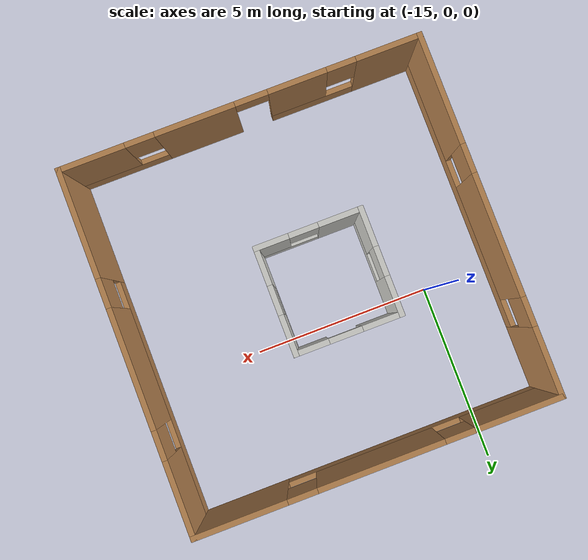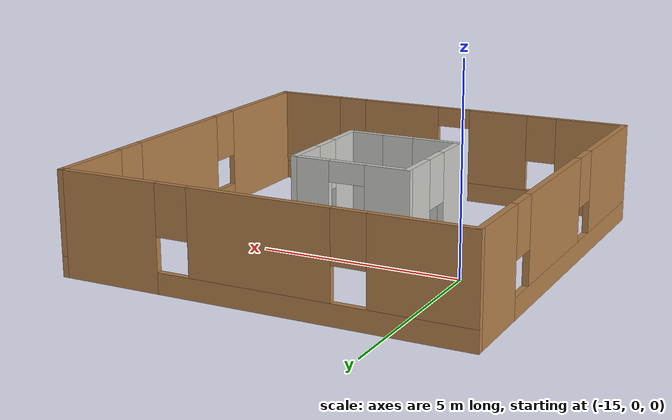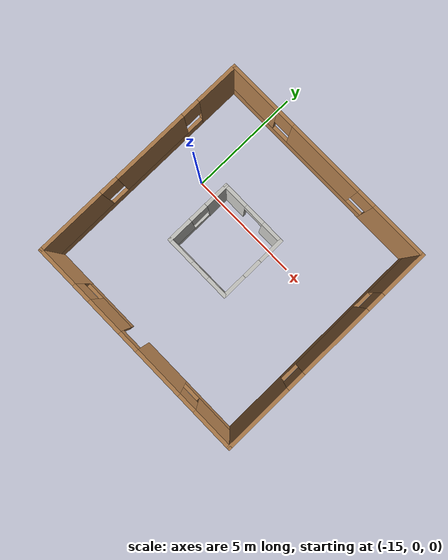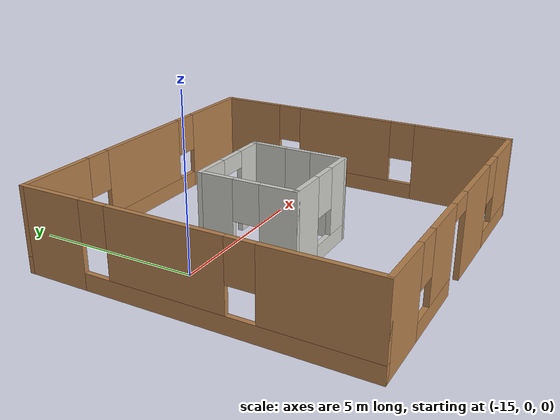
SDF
<?xml version='1.0'?>
<sdf version='1.6'>
  <model name='Building'>
    <pose frame=''>-11.9528 -1.23874 0 0 -0 0</pose>
    <link name='Wall_10'>
      <pose frame=''>-0.487001 1.567 0 0 -0 3.14159</pose>
      <visual name='Wall_10_Visual_0'>
        <pose frame=''>-1.01 0 1.25 0 -0 0</pose>
        <geometry>
          <box>
            <size>0.979999 0.15 2.5</size>
          </box>
        </geometry>
        <material>
          <script>
            <uri>file://media/materials/scripts/gazebo.material</uri>
            <name>Gazebo/CeilingTiled</name>
          </script>
          <ambient>1 1 1 1</ambient>
        </material>
        <meta>
          <layer>0</layer>
        </meta>
      </visual>
      <collision name='Wall_10_Collision_0'>
        <geometry>
          <box>
            <size>0.979999 0.15 2.5</size>
          </box>
        </geometry>
        <pose frame=''>-1.01 0 1.25 0 -0 0</pose>
      </collision>
      <visual name='Wall_10_Visual_1'>
        <pose frame=''>0.94 0 1.25 0 -0 0</pose>
        <geometry>
          <box>
            <size>1.12 0.15 2.5</size>
          </box>
        </geometry>
        <material>
          <script>
            <uri>file://media/materials/scripts/gazebo.material</uri>
            <name>Gazebo/CeilingTiled</name>
          </script>
          <ambient>1 1 1 1</ambient>
        </material>
        <meta>
          <layer>0</layer>
        </meta>
      </visual>
      <collision name='Wall_10_Collision_1'>
        <geometry>
          <box>
            <size>1.12 0.15 2.5</size>
          </box>
        </geometry>
        <pose frame=''>0.94 0 1.25 0 -0 0</pose>
      </collision>
      <visual name='Wall_10_Visual_2'>
        <pose frame=''>-0.070001 0 2.25 0 -0 0</pose>
        <geometry>
          <box>
            <size>0.9 0.15 0.5</size>
          </box>
        </geometry>
        <material>
          <script>
            <uri>file://media/materials/scripts/gazebo.material</uri>
            <name>Gazebo/CeilingTiled</name>
          </script>
          <ambient>1 1 1 1</ambient>
        </material>
        <meta>
          <layer>0</layer>
        </meta>
      </visual>
      <collision name='Wall_10_Collision_2'>
        <geometry>
          <box>
            <size>0.9 0.15 0.5</size>
          </box>
        </geometry>
        <pose frame=''>-0.070001 0 2.25 0 -0 0</pose>
      </collision>
    </link>
    <link name='Wall_2'>
      <pose frame=''>-4.925 0 0 0 0 -1.5708</pose>
      <visual name='Wall_2_Visual_0'>
        <pose frame=''>-4.024 0 1.25 0 -0 0</pose>
        <geometry>
          <box>
            <size>1.952 0.15 2.5</size>
          </box>
        </geometry>
        <material>
          <script>
            <uri>file://media/materials/scripts/gazebo.material</uri>
            <name>Gazebo/Wood</name>
          </script>
          <ambient>0.760784 0.662745 0.627451 1</ambient>
        </material>
        <meta>
          <layer>0</layer>
        </meta>
      </visual>
      <collision name='Wall_2_Collision_0'>
        <geometry>
          <box>
            <size>1.952 0.15 2.5</size>
          </box>
        </geometry>
        <pose frame=''>-4.024 0 1.25 0 -0 0</pose>
      </collision>
      <visual name='Wall_2_Visual_1'>
        <pose frame=''>0.976 0 0.25 0 -0 0</pose>
        <geometry>
          <box>
            <size>8.048 0.15 0.5</size>
          </box>
        </geometry>
        <material>
          <script>
            <uri>file://media/materials/scripts/gazebo.material</uri>
            <name>Gazebo/Wood</name>
          </script>
          <ambient>0.760784 0.662745 0.627451 1</ambient>
        </material>
        <meta>
          <layer>0</layer>
        </meta>
      </visual>
      <collision name='Wall_2_Collision_1'>
        <geometry>
          <box>
            <size>8.048 0.15 0.5</size>
          </box>
        </geometry>
        <pose frame=''>0.976 0 0.25 0 -0 0</pose>
      </collision>
      <visual name='Wall_2_Visual_2'>
        <pose frame=''>-0.5665 0 1.5 0 -0 0</pose>
        <geometry>
          <box>
            <size>3.363 0.15 2</size>
          </box>
        </geometry>
        <material>
          <script>
            <uri>file://media/materials/scripts/gazebo.material</uri>
            <name>Gazebo/Wood</name>
          </script>
          <ambient>0.760784 0.662745 0.627451 1</ambient>
        </material>
        <meta>
          <layer>0</layer>
        </meta>
      </visual>
      <collision name='Wall_2_Collision_2'>
        <geometry>
          <box>
            <size>3.363 0.15 2</size>
          </box>
        </geometry>
        <pose frame=''>-0.5665 0 1.5 0 -0 0</pose>
      </collision>
      <visual name='Wall_2_Visual_3'>
        <pose frame=''>3.4575 0 1.5 0 -0 0</pose>
        <geometry>
          <box>
            <size>3.085 0.15 2</size>
          </box>
        </geometry>
        <material>
          <script>
            <uri>file://media/materials/scripts/gazebo.material</uri>
            <name>Gazebo/Wood</name>
          </script>
          <ambient>0.760784 0.662745 0.627451 1</ambient>
        </material>
        <meta>
          <layer>0</layer>
        </meta>
      </visual>
      <collision name='Wall_2_Collision_3'>
        <geometry>
          <box>
            <size>3.085 0.15 2</size>
          </box>
        </geometry>
        <pose frame=''>3.4575 0 1.5 0 -0 0</pose>
      </collision>
      <visual name='Wall_2_Visual_4'>
        <pose frame=''>-2.648 0 1.9 0 -0 0</pose>
        <geometry>
          <box>
            <size>0.8 0.15 1.2</size>
          </box>
        </geometry>
        <material>
          <script>
            <uri>file://media/materials/scripts/gazebo.material</uri>
            <name>Gazebo/Wood</name>
          </script>
          <ambient>0.760784 0.662745 0.627451 1</ambient>
        </material>
        <meta>
          <layer>0</layer>
        </meta>
      </visual>
      <collision name='Wall_2_Collision_4'>
        <geometry>
          <box>
            <size>0.8 0.15 1.2</size>
          </box>
        </geometry>
        <pose frame=''>-2.648 0 1.9 0 -0 0</pose>
      </collision>
      <visual name='Wall_2_Visual_5'>
        <pose frame=''>1.515 0 1.9 0 -0 0</pose>
        <geometry>
          <box>
            <size>0.8 0.15 1.2</size>
          </box>
        </geometry>
        <material>
          <script>
            <uri>file://media/materials/scripts/gazebo.material</uri>
            <name>Gazebo/Wood</name>
          </script>
          <ambient>0.760784 0.662745 0.627451 1</ambient>
        </material>
        <meta>
          <layer>0</layer>
        </meta>
      </visual>
      <collision name='Wall_2_Collision_5'>
        <geometry>
          <box>
            <size>0.8 0.15 1.2</size>
          </box>
        </geometry>
        <pose frame=''>1.515 0 1.9 0 -0 0</pose>
      </collision>
    </link>
    <link name='Wall_3'>
      <pose frame=''>0 -4.925 0 0 -0 0</pose>
      <visual name='Wall_3_Visual_0'>
        <pose frame=''>-4.0815 0 1.25 0 -0 0</pose>
        <geometry>
          <box>
            <size>1.837 0.15 2.5</size>
          </box>
        </geometry>
        <material>
          <script>
            <uri>file://media/materials/scripts/gazebo.material</uri>
            <name>Gazebo/Wood</name>
          </script>
          <ambient>0.760784 0.662745 0.627451 1</ambient>
        </material>
        <meta>
          <layer>0</layer>
        </meta>
      </visual>
      <collision name='Wall_3_Collision_0'>
        <geometry>
          <box>
            <size>1.837 0.15 2.5</size>
          </box>
        </geometry>
        <pose frame=''>-4.0815 0 1.25 0 -0 0</pose>
      </collision>
      <visual name='Wall_3_Visual_1'>
        <pose frame=''>1.241 0 1.25 0 -0 0</pose>
        <geometry>
          <box>
            <size>2.186 0.15 2.5</size>
          </box>
        </geometry>
        <material>
          <script>
            <uri>file://media/materials/scripts/gazebo.material</uri>
            <name>Gazebo/Wood</name>
          </script>
          <ambient>0.760784 0.662745 0.627451 1</ambient>
        </material>
        <meta>
          <layer>0</layer>
        </meta>
      </visual>
      <collision name='Wall_3_Collision_1'>
        <geometry>
          <box>
            <size>2.186 0.15 2.5</size>
          </box>
        </geometry>
        <pose frame=''>1.241 0 1.25 0 -0 0</pose>
      </collision>
      <visual name='Wall_3_Visual_2'>
        <pose frame=''>-1.9575 0 0.25 0 -0 0</pose>
        <geometry>
          <box>
            <size>2.411 0.15 0.5</size>
          </box>
        </geometry>
        <material>
          <script>
            <uri>file://media/materials/scripts/gazebo.material</uri>
            <name>Gazebo/Wood</name>
          </script>
          <ambient>0.760784 0.662745 0.627451 1</ambient>
        </material>
        <meta>
          <layer>0</layer>
        </meta>
      </visual>
      <collision name='Wall_3_Collision_2'>
        <geometry>
          <box>
            <size>2.411 0.15 0.5</size>
          </box>
        </geometry>
        <pose frame=''>-1.9575 0 0.25 0 -0 0</pose>
      </collision>
      <visual name='Wall_3_Visual_3'>
        <pose frame=''>3.667 0 0.25 0 -0 0</pose>
        <geometry>
          <box>
            <size>2.666 0.15 0.5</size>
          </box>
        </geometry>
        <material>
          <script>
            <uri>file://media/materials/scripts/gazebo.material</uri>
            <name>Gazebo/Wood</name>
          </script>
          <ambient>0.760784 0.662745 0.627451 1</ambient>
        </material>
        <meta>
          <layer>0</layer>
        </meta>
      </visual>
      <collision name='Wall_3_Collision_3'>
        <geometry>
          <box>
            <size>2.666 0.15 0.5</size>
          </box>
        </geometry>
        <pose frame=''>3.667 0 0.25 0 -0 0</pose>
      </collision>
      <visual name='Wall_3_Visual_4'>
        <pose frame=''>-1.5575 0 1.5 0 -0 0</pose>
        <geometry>
          <box>
            <size>1.611 0.15 2</size>
          </box>
        </geometry>
        <material>
          <script>
            <uri>file://media/materials/scripts/gazebo.material</uri>
            <name>Gazebo/Wood</name>
          </script>
          <ambient>0.760784 0.662745 0.627451 1</ambient>
        </material>
        <meta>
          <layer>0</layer>
        </meta>
      </visual>
      <collision name='Wall_3_Collision_4'>
        <geometry>
          <box>
            <size>1.611 0.15 2</size>
          </box>
        </geometry>
        <pose frame=''>-1.5575 0 1.5 0 -0 0</pose>
      </collision>
      <visual name='Wall_3_Visual_5'>
        <pose frame=''>-1.5575 0 1.5 0 -0 0</pose>
        <geometry>
          <box>
            <size>1.611 0.15 2</size>
          </box>
        </geometry>
        <material>
          <script>
            <uri>file://media/materials/scripts/gazebo.material</uri>
            <name>Gazebo/Wood</name>
          </script>
          <ambient>0.760784 0.662745 0.627451 1</ambient>
        </material>
        <meta>
          <layer>0</layer>
        </meta>
      </visual>
      <collision name='Wall_3_Collision_5'>
        <geometry>
          <box>
            <size>1.611 0.15 2</size>
          </box>
        </geometry>
        <pose frame=''>-1.5575 0 1.5 0 -0 0</pose>
      </collision>
      <visual name='Wall_3_Visual_6'>
        <pose frame=''>4.067 0 1.5 0 -0 0</pose>
        <geometry>
          <box>
            <size>1.866 0.15 2</size>
          </box>
        </geometry>
        <material>
          <script>
            <uri>file://media/materials/scripts/gazebo.material</uri>
            <name>Gazebo/Wood</name>
          </script>
          <ambient>0.760784 0.662745 0.627451 1</ambient>
        </material>
        <meta>
          <layer>0</layer>
        </meta>
      </visual>
      <collision name='Wall_3_Collision_6'>
        <geometry>
          <box>
            <size>1.866 0.15 2</size>
          </box>
        </geometry>
        <pose frame=''>4.067 0 1.5 0 -0 0</pose>
      </collision>
      <visual name='Wall_3_Visual_7'>
        <pose frame=''>-2.763 0 1.9 0 -0 0</pose>
        <geometry>
          <box>
            <size>0.8 0.15 1.2</size>
          </box>
        </geometry>
        <material>
          <script>
            <uri>file://media/materials/scripts/gazebo.material</uri>
            <name>Gazebo/Wood</name>
          </script>
          <ambient>0.760784 0.662745 0.627451 1</ambient>
        </material>
        <meta>
          <layer>0</layer>
        </meta>
      </visual>
      <collision name='Wall_3_Collision_7'>
        <geometry>
          <box>
            <size>0.8 0.15 1.2</size>
          </box>
        </geometry>
        <pose frame=''>-2.763 0 1.9 0 -0 0</pose>
      </collision>
      <visual name='Wall_3_Visual_8'>
        <pose frame=''>2.734 0 1.9 0 -0 0</pose>
        <geometry>
          <box>
            <size>0.8 0.15 1.2</size>
          </box>
        </geometry>
        <material>
          <script>
            <uri>file://media/materials/scripts/gazebo.material</uri>
            <name>Gazebo/Wood</name>
          </script>
          <ambient>0.760784 0.662745 0.627451 1</ambient>
        </material>
        <meta>
          <layer>0</layer>
        </meta>
      </visual>
      <collision name='Wall_3_Collision_8'>
        <geometry>
          <box>
            <size>0.8 0.15 1.2</size>
          </box>
        </geometry>
        <pose frame=''>2.734 0 1.9 0 -0 0</pose>
      </collision>
      <visual name='Wall_3_Visual_9'>
        <pose frame=''>-0.302 0 2.25 0 -0 0</pose>
        <geometry>
          <box>
            <size>0.9 0.15 0.5</size>
          </box>
        </geometry>
        <material>
          <script>
            <uri>file://media/materials/scripts/gazebo.material</uri>
            <name>Gazebo/Wood</name>
          </script>
          <ambient>0.760784 0.662745 0.627451 1</ambient>
        </material>
        <meta>
          <layer>0</layer>
        </meta>
      </visual>
      <collision name='Wall_3_Collision_9'>
        <geometry>
          <box>
            <size>0.9 0.15 0.5</size>
          </box>
        </geometry>
        <pose frame=''>-0.302 0 2.25 0 -0 0</pose>
      </collision>
      <visual name='Wall_3_Visual_10'>
        <pose frame=''>-0.302 0 2.25 0 -0 0</pose>
        <geometry>
          <box>
            <size>0.9 0.15 0.5</size>
          </box>
        </geometry>
        <material>
          <script>
            <uri>file://media/materials/scripts/gazebo.material</uri>
            <name>Gazebo/Wood</name>
          </script>
          <ambient>0.760784 0.662745 0.627451 1</ambient>
        </material>
        <meta>
          <layer>0</layer>
        </meta>
      </visual>
      <collision name='Wall_3_Collision_10'>
        <geometry>
          <box>
            <size>0.9 0.15 0.5</size>
          </box>
        </geometry>
        <pose frame=''>-0.302 0 2.25 0 -0 0</pose>
      </collision>
    </link>
    <link name='Wall_4'>
      <pose frame=''>4.925 0 0 0 -0 1.5708</pose>
      <visual name='Wall_4_Visual_0'>
        <pose frame=''>-3.492 0 1.25 0 -0 0</pose>
        <geometry>
          <box>
            <size>3.016 0.15 2.5</size>
          </box>
        </geometry>
        <material>
          <script>
            <uri>file://media/materials/scripts/gazebo.material</uri>
            <name>Gazebo/Wood</name>
          </script>
          <ambient>0.760784 0.662745 0.627451 1</ambient>
        </material>
        <meta>
          <layer>0</layer>
        </meta>
      </visual>
      <collision name='Wall_4_Collision_0'>
        <geometry>
          <box>
            <size>3.016 0.15 2.5</size>
          </box>
        </geometry>
        <pose frame=''>-3.492 0 1.25 0 -0 0</pose>
      </collision>
      <visual name='Wall_4_Visual_1'>
        <pose frame=''>1.508 0 0.25 0 -0 0</pose>
        <geometry>
          <box>
            <size>6.984 0.15 0.5</size>
          </box>
        </geometry>
        <material>
          <script>
            <uri>file://media/materials/scripts/gazebo.material</uri>
            <name>Gazebo/Wood</name>
          </script>
          <ambient>0.760784 0.662745 0.627451 1</ambient>
        </material>
        <meta>
          <layer>0</layer>
        </meta>
      </visual>
      <collision name='Wall_4_Collision_1'>
        <geometry>
          <box>
            <size>6.984 0.15 0.5</size>
          </box>
        </geometry>
        <pose frame=''>1.508 0 0.25 0 -0 0</pose>
      </collision>
      <visual name='Wall_4_Visual_2'>
        <pose frame=''>0.4515 0 1.5 0 -0 0</pose>
        <geometry>
          <box>
            <size>3.271 0.15 2</size>
          </box>
        </geometry>
        <material>
          <script>
            <uri>file://media/materials/scripts/gazebo.material</uri>
            <name>Gazebo/Wood</name>
          </script>
          <ambient>0.760784 0.662745 0.627451 1</ambient>
        </material>
        <meta>
          <layer>0</layer>
        </meta>
      </visual>
      <collision name='Wall_4_Collision_2'>
        <geometry>
          <box>
            <size>3.271 0.15 2</size>
          </box>
        </geometry>
        <pose frame=''>0.4515 0 1.5 0 -0 0</pose>
      </collision>
      <visual name='Wall_4_Visual_3'>
        <pose frame=''>3.9435 0 1.5 0 -0 0</pose>
        <geometry>
          <box>
            <size>2.113 0.15 2</size>
          </box>
        </geometry>
        <material>
          <script>
            <uri>file://media/materials/scripts/gazebo.material</uri>
            <name>Gazebo/Wood</name>
          </script>
          <ambient>0.760784 0.662745 0.627451 1</ambient>
        </material>
        <meta>
          <layer>0</layer>
        </meta>
      </visual>
      <collision name='Wall_4_Collision_3'>
        <geometry>
          <box>
            <size>2.113 0.15 2</size>
          </box>
        </geometry>
        <pose frame=''>3.9435 0 1.5 0 -0 0</pose>
      </collision>
      <visual name='Wall_4_Visual_4'>
        <pose frame=''>-1.584 0 1.9 0 -0 0</pose>
        <geometry>
          <box>
            <size>0.8 0.15 1.2</size>
          </box>
        </geometry>
        <material>
          <script>
            <uri>file://media/materials/scripts/gazebo.material</uri>
            <name>Gazebo/Wood</name>
          </script>
          <ambient>0.760784 0.662745 0.627451 1</ambient>
        </material>
        <meta>
          <layer>0</layer>
        </meta>
      </visual>
      <collision name='Wall_4_Collision_4'>
        <geometry>
          <box>
            <size>0.8 0.15 1.2</size>
          </box>
        </geometry>
        <pose frame=''>-1.584 0 1.9 0 -0 0</pose>
      </collision>
      <visual name='Wall_4_Visual_5'>
        <pose frame=''>2.487 0 1.9 0 -0 0</pose>
        <geometry>
          <box>
            <size>0.8 0.15 1.2</size>
          </box>
        </geometry>
        <material>
          <script>
            <uri>file://media/materials/scripts/gazebo.material</uri>
            <name>Gazebo/Wood</name>
          </script>
          <ambient>0.760784 0.662745 0.627451 1</ambient>
        </material>
        <meta>
          <layer>0</layer>
        </meta>
      </visual>
      <collision name='Wall_4_Collision_5'>
        <geometry>
          <box>
            <size>0.8 0.15 1.2</size>
          </box>
        </geometry>
        <pose frame=''>2.487 0 1.9 0 -0 0</pose>
      </collision>
    </link>
    <link name='Wall_5'>
      <pose frame=''>0 4.925 0 0 -0 3.14159</pose>
      <visual name='Wall_5_Visual_0'>
        <pose frame=''>-3.7105 0 1.25 0 -0 0</pose>
        <geometry>
          <box>
            <size>2.579 0.15 2.5</size>
          </box>
        </geometry>
        <material>
          <script>
            <uri>file://media/materials/scripts/gazebo.material</uri>
            <name>Gazebo/Wood</name>
          </script>
          <ambient>1 1 1 1</ambient>
        </material>
        <meta>
          <layer>0</layer>
        </meta>
      </visual>
      <collision name='Wall_5_Collision_0'>
        <geometry>
          <box>
            <size>2.579 0.15 2.5</size>
          </box>
        </geometry>
        <pose frame=''>-3.7105 0 1.25 0 -0 0</pose>
      </collision>
      <visual name='Wall_5_Visual_1'>
        <pose frame=''>1.2895 0 0.25 0 -0 0</pose>
        <geometry>
          <box>
            <size>7.421 0.15 0.5</size>
          </box>
        </geometry>
        <material>
          <script>
            <uri>file://media/materials/scripts/gazebo.material</uri>
            <name>Gazebo/Wood</name>
          </script>
          <ambient>1 1 1 1</ambient>
        </material>
        <meta>
          <layer>0</layer>
        </meta>
      </visual>
      <collision name='Wall_5_Collision_1'>
        <geometry>
          <box>
            <size>7.421 0.15 0.5</size>
          </box>
        </geometry>
        <pose frame=''>1.2895 0 0.25 0 -0 0</pose>
      </collision>
      <visual name='Wall_5_Visual_2'>
        <pose frame=''>0.0835 0 1.5 0 -0 0</pose>
        <geometry>
          <box>
            <size>3.409 0.15 2</size>
          </box>
        </geometry>
        <material>
          <script>
            <uri>file://media/materials/scripts/gazebo.material</uri>
            <name>Gazebo/Wood</name>
          </script>
          <ambient>1 1 1 1</ambient>
        </material>
        <meta>
          <layer>0</layer>
        </meta>
      </visual>
      <collision name='Wall_5_Collision_2'>
        <geometry>
          <box>
            <size>3.409 0.15 2</size>
          </box>
        </geometry>
        <pose frame=''>0.0835 0 1.5 0 -0 0</pose>
      </collision>
      <visual name='Wall_5_Visual_3'>
        <pose frame=''>3.794 0 1.5 0 -0 0</pose>
        <geometry>
          <box>
            <size>2.412 0.15 2</size>
          </box>
        </geometry>
        <material>
          <script>
            <uri>file://media/materials/scripts/gazebo.material</uri>
            <name>Gazebo/Wood</name>
          </script>
          <ambient>1 1 1 1</ambient>
        </material>
        <meta>
          <layer>0</layer>
        </meta>
      </visual>
      <collision name='Wall_5_Collision_3'>
        <geometry>
          <box>
            <size>2.412 0.15 2</size>
          </box>
        </geometry>
        <pose frame=''>3.794 0 1.5 0 -0 0</pose>
      </collision>
      <visual name='Wall_5_Visual_4'>
        <pose frame=''>-2.021 0 1.9 0 -0 0</pose>
        <geometry>
          <box>
            <size>0.8 0.15 1.2</size>
          </box>
        </geometry>
        <material>
          <script>
            <uri>file://media/materials/scripts/gazebo.material</uri>
            <name>Gazebo/Wood</name>
          </script>
          <ambient>1 1 1 1</ambient>
        </material>
        <meta>
          <layer>0</layer>
        </meta>
      </visual>
      <collision name='Wall_5_Collision_4'>
        <geometry>
          <box>
            <size>0.8 0.15 1.2</size>
          </box>
        </geometry>
        <pose frame=''>-2.021 0 1.9 0 -0 0</pose>
      </collision>
      <visual name='Wall_5_Visual_5'>
        <pose frame=''>2.188 0 1.9 0 -0 0</pose>
        <geometry>
          <box>
            <size>0.8 0.15 1.2</size>
          </box>
        </geometry>
        <material>
          <script>
            <uri>file://media/materials/scripts/gazebo.material</uri>
            <name>Gazebo/Wood</name>
          </script>
          <ambient>1 1 1 1</ambient>
        </material>
        <meta>
          <layer>0</layer>
        </meta>
      </visual>
      <collision name='Wall_5_Collision_5'>
        <geometry>
          <box>
            <size>0.8 0.15 1.2</size>
          </box>
        </geometry>
        <pose frame=''>2.188 0 1.9 0 -0 0</pose>
      </collision>
    </link>
    <link name='Wall_7'>
      <pose frame=''>-1.912 0.142 0 0 0 -1.5708</pose>
      <visual name='Wall_7_Visual_0'>
        <pose frame=''>-0.9495 0 1.25 0 -0 0</pose>
        <geometry>
          <box>
            <size>1.101 0.15 2.5</size>
          </box>
        </geometry>
        <material>
          <script>
            <uri>file://media/materials/scripts/gazebo.material</uri>
            <name>Gazebo/CeilingTiled</name>
          </script>
          <ambient>0.760784 0.662745 0.627451 1</ambient>
        </material>
        <meta>
          <layer>0</layer>
        </meta>
      </visual>
      <collision name='Wall_7_Collision_0'>
        <geometry>
          <box>
            <size>1.101 0.15 2.5</size>
          </box>
        </geometry>
        <pose frame=''>-0.9495 0 1.25 0 -0 0</pose>
      </collision>
      <visual name='Wall_7_Visual_1'>
        <pose frame=''>0.5505 0 0.25 0 -0 0</pose>
        <geometry>
          <box>
            <size>1.899 0.15 0.5</size>
          </box>
        </geometry>
        <material>
          <script>
            <uri>file://media/materials/scripts/gazebo.material</uri>
            <name>Gazebo/CeilingTiled</name>
          </script>
          <ambient>0.760784 0.662745 0.627451 1</ambient>
        </material>
        <meta>
          <layer>0</layer>
        </meta>
      </visual>
      <collision name='Wall_7_Collision_1'>
        <geometry>
          <box>
            <size>1.899 0.15 0.5</size>
          </box>
        </geometry>
        <pose frame=''>0.5505 0 0.25 0 -0 0</pose>
      </collision>
      <visual name='Wall_7_Visual_2'>
        <pose frame=''>0.9505 0 1.5 0 -0 0</pose>
        <geometry>
          <box>
            <size>1.099 0.15 2</size>
          </box>
        </geometry>
        <material>
          <script>
            <uri>file://media/materials/scripts/gazebo.material</uri>
            <name>Gazebo/CeilingTiled</name>
          </script>
          <ambient>0.760784 0.662745 0.627451 1</ambient>
        </material>
        <meta>
          <layer>0</layer>
        </meta>
      </visual>
      <collision name='Wall_7_Collision_2'>
        <geometry>
          <box>
            <size>1.099 0.15 2</size>
          </box>
        </geometry>
        <pose frame=''>0.9505 0 1.5 0 -0 0</pose>
      </collision>
      <visual name='Wall_7_Visual_3'>
        <pose frame=''>0.001 0 1.9 0 -0 0</pose>
        <geometry>
          <box>
            <size>0.8 0.15 1.2</size>
          </box>
        </geometry>
        <material>
          <script>
            <uri>file://media/materials/scripts/gazebo.material</uri>
            <name>Gazebo/CeilingTiled</name>
          </script>
          <ambient>0.760784 0.662745 0.627451 1</ambient>
        </material>
        <meta>
          <layer>0</layer>
        </meta>
      </visual>
      <collision name='Wall_7_Collision_3'>
        <geometry>
          <box>
            <size>0.8 0.15 1.2</size>
          </box>
        </geometry>
        <pose frame=''>0.001 0 1.9 0 -0 0</pose>
      </collision>
    </link>
    <link name='Wall_8'>
      <pose frame=''>-0.487001 -1.283 0 0 -0 0</pose>
      <visual name='Wall_8_Visual_0'>
        <pose frame=''>-0.8805 0 1.25 0 -0 0</pose>
        <geometry>
          <box>
            <size>1.239 0.15 2.5</size>
          </box>
        </geometry>
        <material>
          <script>
            <uri>file://media/materials/scripts/gazebo.material</uri>
            <name>Gazebo/CeilingTiled</name>
          </script>
          <ambient>0.760784 0.662745 0.627451 1</ambient>
        </material>
        <meta>
          <layer>0</layer>
        </meta>
      </visual>
      <collision name='Wall_8_Collision_0'>
        <geometry>
          <box>
            <size>1.239 0.15 2.5</size>
          </box>
        </geometry>
        <pose frame=''>-0.8805 0 1.25 0 -0 0</pose>
      </collision>
      <visual name='Wall_8_Visual_1'>
        <pose frame=''>0.6195 0 0.25 0 -0 0</pose>
        <geometry>
          <box>
            <size>1.761 0.15 0.5</size>
          </box>
        </geometry>
        <material>
          <script>
            <uri>file://media/materials/scripts/gazebo.material</uri>
            <name>Gazebo/CeilingTiled</name>
          </script>
          <ambient>0.760784 0.662745 0.627451 1</ambient>
        </material>
        <meta>
          <layer>0</layer>
        </meta>
      </visual>
      <collision name='Wall_8_Collision_1'>
        <geometry>
          <box>
            <size>1.761 0.15 0.5</size>
          </box>
        </geometry>
        <pose frame=''>0.6195 0 0.25 0 -0 0</pose>
      </collision>
      <visual name='Wall_8_Visual_2'>
        <pose frame=''>1.0195 0 1.5 0 -0 0</pose>
        <geometry>
          <box>
            <size>0.960999 0.15 2</size>
          </box>
        </geometry>
        <material>
          <script>
            <uri>file://media/materials/scripts/gazebo.material</uri>
            <name>Gazebo/CeilingTiled</name>
          </script>
          <ambient>0.760784 0.662745 0.627451 1</ambient>
        </material>
        <meta>
          <layer>0</layer>
        </meta>
      </visual>
      <collision name='Wall_8_Collision_2'>
        <geometry>
          <box>
            <size>0.960999 0.15 2</size>
          </box>
        </geometry>
        <pose frame=''>1.0195 0 1.5 0 -0 0</pose>
      </collision>
      <visual name='Wall_8_Visual_3'>
        <pose frame=''>0.139001 0 1.9 0 -0 0</pose>
        <geometry>
          <box>
            <size>0.8 0.15 1.2</size>
          </box>
        </geometry>
        <material>
          <script>
            <uri>file://media/materials/scripts/gazebo.material</uri>
            <name>Gazebo/CeilingTiled</name>
          </script>
          <ambient>0.760784 0.662745 0.627451 1</ambient>
        </material>
        <meta>
          <layer>0</layer>
        </meta>
      </visual>
      <collision name='Wall_8_Collision_3'>
        <geometry>
          <box>
            <size>0.8 0.15 1.2</size>
          </box>
        </geometry>
        <pose frame=''>0.139001 0 1.9 0 -0 0</pose>
      </collision>
    </link>
    <link name='Wall_9'>
      <pose frame=''>0.937999 0.142 0 0 -0 1.5708</pose>
      <visual name='Wall_9_Visual_0'>
        <pose frame=''>-0.962 0 1.25 0 -0 0</pose>
        <geometry>
          <box>
            <size>1.076 0.15 2.5</size>
          </box>
        </geometry>
        <material>
          <script>
            <uri>file://media/materials/scripts/gazebo.material</uri>
            <name>Gazebo/CeilingTiled</name>
          </script>
          <ambient>0.760784 0.662745 0.627451 1</ambient>
        </material>
        <meta>
          <layer>0</layer>
        </meta>
      </visual>
      <collision name='Wall_9_Collision_0'>
        <geometry>
          <box>
            <size>1.076 0.15 2.5</size>
          </box>
        </geometry>
        <pose frame=''>-0.962 0 1.25 0 -0 0</pose>
      </collision>
      <visual name='Wall_9_Visual_1'>
        <pose frame=''>0.538 0 0.25 0 -0 0</pose>
        <geometry>
          <box>
            <size>1.924 0.15 0.5</size>
          </box>
        </geometry>
        <material>
          <script>
            <uri>file://media/materials/scripts/gazebo.material</uri>
            <name>Gazebo/CeilingTiled</name>
          </script>
          <ambient>0.760784 0.662745 0.627451 1</ambient>
        </material>
        <meta>
          <layer>0</layer>
        </meta>
      </visual>
      <collision name='Wall_9_Collision_1'>
        <geometry>
          <box>
            <size>1.924 0.15 0.5</size>
          </box>
        </geometry>
        <pose frame=''>0.538 0 0.25 0 -0 0</pose>
      </collision>
      <visual name='Wall_9_Visual_2'>
        <pose frame=''>0.938 0 1.5 0 -0 0</pose>
        <geometry>
          <box>
            <size>1.124 0.15 2</size>
          </box>
        </geometry>
        <material>
          <script>
            <uri>file://media/materials/scripts/gazebo.material</uri>
            <name>Gazebo/CeilingTiled</name>
          </script>
          <ambient>0.760784 0.662745 0.627451 1</ambient>
        </material>
        <meta>
          <layer>0</layer>
        </meta>
      </visual>
      <collision name='Wall_9_Collision_2'>
        <geometry>
          <box>
            <size>1.124 0.15 2</size>
          </box>
        </geometry>
        <pose frame=''>0.938 0 1.5 0 -0 0</pose>
      </collision>
      <visual name='Wall_9_Visual_3'>
        <pose frame=''>-0.024 0 1.9 0 -0 0</pose>
        <geometry>
          <box>
            <size>0.8 0.15 1.2</size>
          </box>
        </geometry>
        <material>
          <script>
            <uri>file://media/materials/scripts/gazebo.material</uri>
            <name>Gazebo/CeilingTiled</name>
          </script>
          <ambient>0.760784 0.662745 0.627451 1</ambient>
        </material>
        <meta>
          <layer>0</layer>
        </meta>
      </visual>
      <collision name='Wall_9_Collision_3'>
        <geometry>
          <box>
            <size>0.8 0.15 1.2</size>
          </box>
        </geometry>
        <pose frame=''>-0.024 0 1.9 0 -0 0</pose>
      </collision>
    </link>
    <static>1</static>
  </model>
</sdf>
